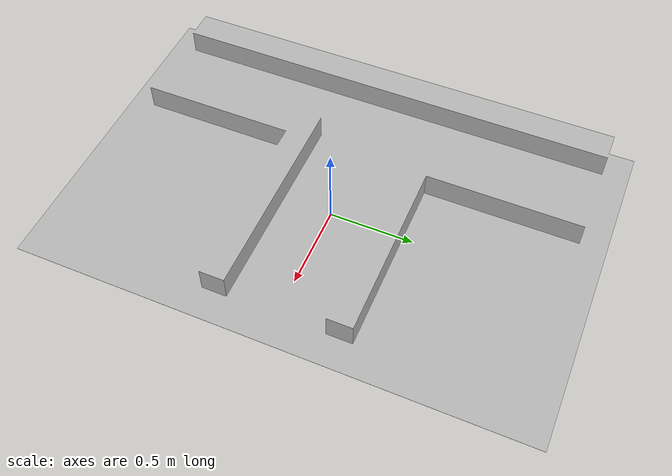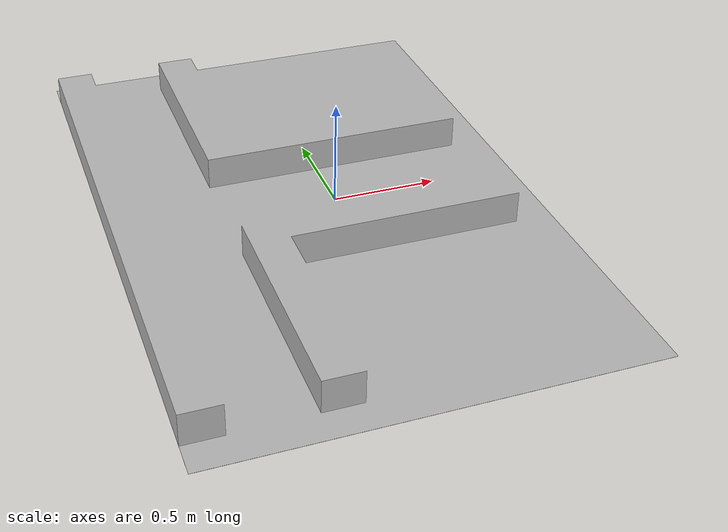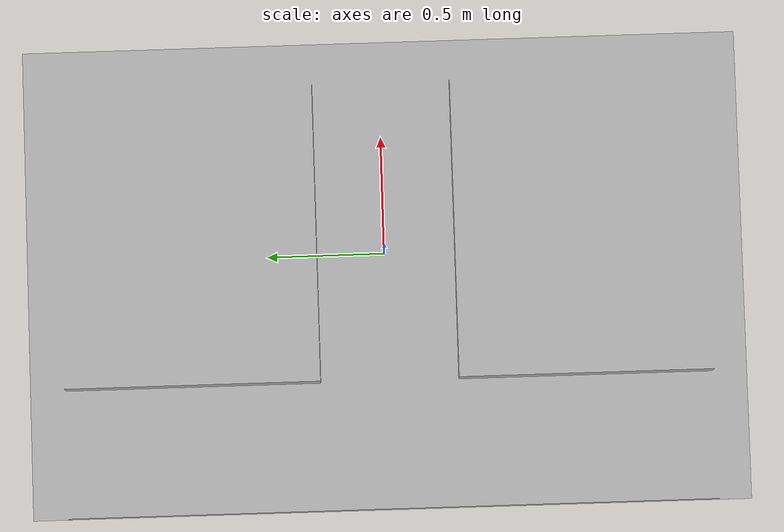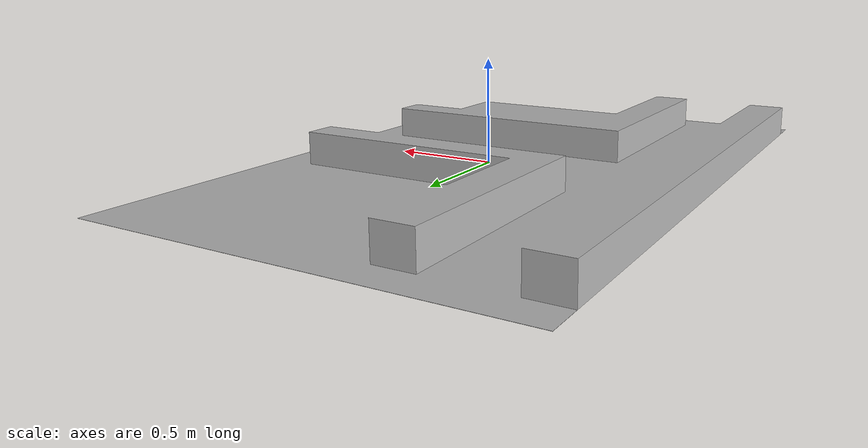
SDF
<sdf version="1.7">
 <world name="default">
  <light name="sun" type="directional">
   <cast_shadows>0</cast_shadows>
   <pose>0 0 10 0 -0 0</pose>
   <diffuse>0.8 0.8 0.8 1</diffuse>
   <specular>0.2 0.2 0.2 1</specular>
   <attenuation>
    <range>1000</range>
    <constant>0.9</constant>
    <linear>0.01</linear>
    <quadratic>0.001</quadratic>
   </attenuation>
   <direction>-0.5 0.1 -0.9</direction>
   <spot><inner_angle>0</inner_angle><outer_angle>0</outer_angle><falloff>0</falloff></spot>
  </light>
  <gravity>0 0 -9.8</gravity>
  <magnetic_field>6e-06 2.3e-05 -4.2e-05</magnetic_field>
  <atmosphere type="adiabatic"/>
  <physics type="ode">
   <max_step_size>0.001</max_step_size>
   <real_time_factor>1</real_time_factor>
   <real_time_update_rate>1000</real_time_update_rate>
  </physics>
  <scene><ambient>0.4 0.4 0.4 1</ambient><background>0.7 0.7 0.7 1</background><shadows>0</shadows></scene>
  <spherical_coordinates>
   <surface_model>EARTH_WGS84</surface_model>
   <latitude_deg>0</latitude_deg>
   <longitude_deg>0</longitude_deg>
   <elevation>0</elevation>
   <heading_deg>0</heading_deg>
  </spherical_coordinates>
  <model name="arena_model">
   <static>1</static>
   <link name="camera_base_link">
    <collision name="collision">
     <geometry>
      <mesh><scale>1 1 1</scale><uri>model://flipkart_round_one/material/final_arena_aruco.dae</uri></mesh>
     </geometry>
     <surface><friction><ode><mu>100</mu><mu2>50</mu2></ode></friction></surface>
    </collision>
    <visual name="visual">
     <cast_shadows>0</cast_shadows>
     <geometry>
      <mesh><scale>1 1 1</scale><uri>model://flipkart_round_one/material/final_arena_aruco.dae</uri></mesh>
     </geometry>
    </visual>
   </link>
   <link name="camera_link"/>
   <joint name="cam_dem_joint" type="fixed">
    <pose relative_to="camera_dem_base_link">0.00 0 2 0 -0 0</pose>
    <parent>camera_base_link</parent>
    <child>camera_link</child>
    <axis>
     <xyz>0 1 0</xyz>
     <limit><lower>-3.142</lower><upper>3.142</upper><effort>150</effort><velocity>1.5</velocity></limit>
     <dynamics><spring_reference>0</spring_reference><spring_stiffness>0</spring_stiffness></dynamics>
    </axis>
   </joint>
   <sensor name="camera" type="camera">
    <update_rate>30</update_rate>
    <camera name="head">
     <horizontal_fov>1.39626</horizontal_fov>
     <image><width>640</width><height>480</height><format>R8G8B8</format></image>
     <clip><near>0.02</near><far>300</far></clip>
     <noise><type>gaussian</type><mean>0</mean><stddev>0.007</stddev></noise>
    </camera>
    <plugin name="camera_controller" filename="libgazebo_ros_camera.so">
     <alwaysOn>1</alwaysOn>
     <updateRate>0.0</updateRate>
     <cameraName>usb_cam</cameraName>
     <imageTopicName>image_raw</imageTopicName>
     <cameraInfoTopicName>/camera/camera_info</cameraInfoTopicName>
     <frameName>camera_link</frameName>
     <hackBaseline>0.07</hackBaseline>
     <distortionK1>0.0</distortionK1>
     <distortionK2>0.0</distortionK2>
     <distortionK3>0.0</distortionK3>
     <distortionT1>0.0</distortionT1>
     <distortionT2>0.0</distortionT2>
    </plugin>
    <pose>0 0 5 -3.14119 1.571 1.571</pose>
   </sensor>
  </model>
 </world>
</sdf>
